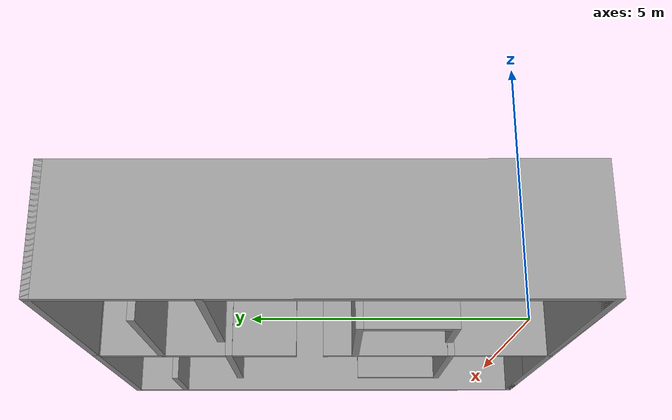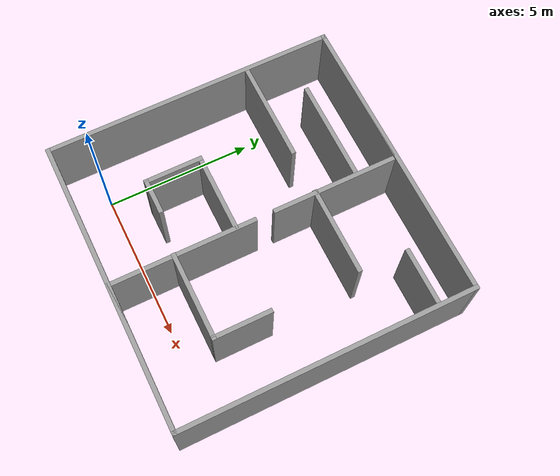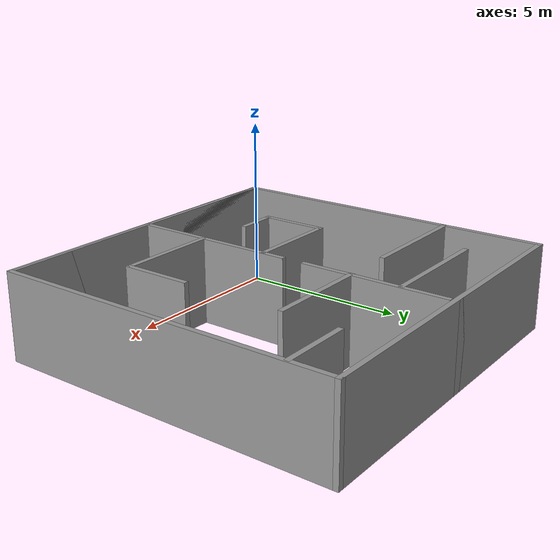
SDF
<?xml version='1.0'?>
<sdf version='1.7'>
  <model name='Untitled'>
    <pose>3.495 3.725 0 0 -0 0</pose>
    <link name='Wall_0'>
      <collision name='Wall_0_Collision'>
        <geometry>
          <box>
            <size>10 0.15 2.5</size>
          </box>
        </geometry>
        <pose>0 0 1.25 0 -0 0</pose>
      </collision>
      <visual name='Wall_0_Visual'>
        <pose>0 0 1.25 0 -0 0</pose>
        <geometry>
          <box>
            <size>10 0.15 2.5</size>
          </box>
        </geometry>
        <material>
          <script>
            <uri>file://media/materials/scripts/gazebo.material</uri>
            <name>Gazebo/Grey</name>
          </script>
          <ambient>1 1 1 1</ambient>
        </material>
        <meta>
          <layer>0</layer>
        </meta>
      </visual>
      <pose>-0 -4.925 0 0 -0 0</pose>
    </link>
    <link name='Wall_1'>
      <collision name='Wall_1_Collision'>
        <geometry>
          <box>
            <size>10 0.15 2.5</size>
          </box>
        </geometry>
        <pose>0 0 1.25 0 -0 0</pose>
      </collision>
      <visual name='Wall_1_Visual'>
        <pose>0 0 1.25 0 -0 0</pose>
        <geometry>
          <box>
            <size>10 0.15 2.5</size>
          </box>
        </geometry>
        <material>
          <script>
            <uri>file://media/materials/scripts/gazebo.material</uri>
            <name>Gazebo/Grey</name>
          </script>
          <ambient>1 1 1 1</ambient>
        </material>
        <meta>
          <layer>0</layer>
        </meta>
      </visual>
      <pose>4.925 0 0 0 -0 1.5708</pose>
    </link>
    <link name='Wall_10'>
      <collision name='Wall_10_Collision'>
        <geometry>
          <box>
            <size>5 0.15 2.5</size>
          </box>
        </geometry>
        <pose>0 0 1.25 0 -0 0</pose>
      </collision>
      <visual name='Wall_10_Visual'>
        <pose>0 0 1.25 0 -0 0</pose>
        <geometry>
          <box>
            <size>5 0.15 2.5</size>
          </box>
        </geometry>
        <material>
          <script>
            <uri>file://media/materials/scripts/gazebo.material</uri>
            <name>Gazebo/Grey</name>
          </script>
          <ambient>1 1 1 1</ambient>
        </material>
        <meta>
          <layer>0</layer>
        </meta>
      </visual>
      <pose>0.075 -2.5 0 0 -0 1.5708</pose>
    </link>
    <link name='Wall_13'>
      <collision name='Wall_13_Collision'>
        <geometry>
          <box>
            <size>5 0.15 2.5</size>
          </box>
        </geometry>
        <pose>0 0 1.25 0 -0 0</pose>
      </collision>
      <visual name='Wall_13_Visual'>
        <pose>0 0 1.25 0 -0 0</pose>
        <geometry>
          <box>
            <size>5 0.15 2.5</size>
          </box>
        </geometry>
        <material>
          <script>
            <uri>file://media/materials/scripts/gazebo.material</uri>
            <name>Gazebo/Grey</name>
          </script>
          <ambient>1 1 1 1</ambient>
        </material>
        <meta>
          <layer>0</layer>
        </meta>
      </visual>
      <pose>-2.5 4.925 0 0 -0 0</pose>
    </link>
    <link name='Wall_15'>
      <collision name='Wall_15_Collision'>
        <geometry>
          <box>
            <size>4.25 0.15 2.5</size>
          </box>
        </geometry>
        <pose>0 0 1.25 0 -0 0</pose>
      </collision>
      <visual name='Wall_15_Visual'>
        <pose>0 0 1.25 0 -0 0</pose>
        <geometry>
          <box>
            <size>4.25 0.15 2.5</size>
          </box>
        </geometry>
        <material>
          <script>
            <uri>file://media/materials/scripts/gazebo.material</uri>
            <name>Gazebo/Grey</name>
          </script>
          <ambient>1 1 1 1</ambient>
        </material>
        <meta>
          <layer>0</layer>
        </meta>
      </visual>
      <pose>0.078854 2.7046 0 0 -0 1.5708</pose>
    </link>
    <link name='Wall_17'>
      <collision name='Wall_17_Collision'>
        <geometry>
          <box>
            <size>3.5 0.15 2.5</size>
          </box>
        </geometry>
        <pose>0 0 1.25 0 -0 0</pose>
      </collision>
      <visual name='Wall_17_Visual'>
        <pose>0 0 1.25 0 -0 0</pose>
        <geometry>
          <box>
            <size>3.5 0.15 2.5</size>
          </box>
        </geometry>
        <material>
          <script>
            <uri>file://media/materials/scripts/gazebo.material</uri>
            <name>Gazebo/Grey</name>
          </script>
          <ambient>1 1 1 1</ambient>
        </material>
        <meta>
          <layer>0</layer>
        </meta>
      </visual>
      <pose>-1.65064 3.48921 0 0 -0 3.14159</pose>
    </link>
    <link name='Wall_19'>
      <collision name='Wall_19_Collision'>
        <geometry>
          <box>
            <size>3.5 0.15 2.5</size>
          </box>
        </geometry>
        <pose>0 0 1.25 0 -0 0</pose>
      </collision>
      <visual name='Wall_19_Visual'>
        <pose>0 0 1.25 0 -0 0</pose>
        <geometry>
          <box>
            <size>3.5 0.15 2.5</size>
          </box>
        </geometry>
        <material>
          <script>
            <uri>file://media/materials/scripts/gazebo.material</uri>
            <name>Gazebo/Grey</name>
          </script>
          <ambient>1 1 1 1</ambient>
        </material>
        <meta>
          <layer>0</layer>
        </meta>
      </visual>
      <pose>-3.19049 2.04688 0 0 -0 0</pose>
    </link>
    <link name='Wall_2'>
      <collision name='Wall_2_Collision'>
        <geometry>
          <box>
            <size>10 0.15 2.5</size>
          </box>
        </geometry>
        <pose>0 0 1.25 0 -0 0</pose>
      </collision>
      <visual name='Wall_2_Visual'>
        <pose>0 0 1.25 0 -0 0</pose>
        <geometry>
          <box>
            <size>10 0.15 2.5</size>
          </box>
        </geometry>
        <material>
          <script>
            <uri>file://media/materials/scripts/gazebo.material</uri>
            <name>Gazebo/Grey</name>
          </script>
          <ambient>1 1 1 1</ambient>
        </material>
        <meta>
          <layer>0</layer>
        </meta>
      </visual>
      <pose>-0 4.925 0 0 -0 3.14159</pose>
    </link>
    <link name='Wall_21'>
      <collision name='Wall_21_Collision'>
        <geometry>
          <box>
            <size>2.75 0.15 2.5</size>
          </box>
        </geometry>
        <pose>0 0 1.25 0 -0 0</pose>
      </collision>
      <visual name='Wall_21_Visual'>
        <pose>0 0 1.25 0 -0 0</pose>
        <geometry>
          <box>
            <size>2.75 0.15 2.5</size>
          </box>
        </geometry>
        <material>
          <script>
            <uri>file://media/materials/scripts/gazebo.material</uri>
            <name>Gazebo/Grey</name>
          </script>
          <ambient>1 1 1 1</ambient>
        </material>
        <meta>
          <layer>0</layer>
        </meta>
      </visual>
      <pose>-1.27564 -0.697061 0 0 -0 3.14159</pose>
    </link>
    <link name='Wall_22'>
      <collision name='Wall_22_Collision'>
        <geometry>
          <box>
            <size>2 0.15 2.5</size>
          </box>
        </geometry>
        <pose>0 0 1.25 0 -0 0</pose>
      </collision>
      <visual name='Wall_22_Visual'>
        <pose>0 0 1.25 0 -0 0</pose>
        <geometry>
          <box>
            <size>2 0.15 2.5</size>
          </box>
        </geometry>
        <material>
          <script>
            <uri>file://media/materials/scripts/gazebo.material</uri>
            <name>Gazebo/Grey</name>
          </script>
          <ambient>1 1 1 1</ambient>
        </material>
        <meta>
          <layer>0</layer>
        </meta>
      </visual>
      <pose>-2.57564 -1.62206 0 0 -0 -1.5708</pose>
    </link>
    <link name='Wall_23'>
      <collision name='Wall_23_Collision'>
        <geometry>
          <box>
            <size>1.25 0.15 2.5</size>
          </box>
        </geometry>
        <pose>0 0 1.25 0 -0 0</pose>
      </collision>
      <visual name='Wall_23_Visual'>
        <pose>0 0 1.25 0 -0 0</pose>
        <geometry>
          <box>
            <size>1.25 0.15 2.5</size>
          </box>
        </geometry>
        <material>
          <script>
            <uri>file://media/materials/scripts/gazebo.material</uri>
            <name>Gazebo/Grey</name>
          </script>
          <ambient>1 1 1 1</ambient>
        </material>
        <meta>
          <layer>0</layer>
        </meta>
      </visual>
      <pose>-2.02564 -2.54706 0 0 -0 0</pose>
    </link>
    <link name='Wall_26'>
      <collision name='Wall_26_Collision'>
        <geometry>
          <box>
            <size>3 0.15 2.5</size>
          </box>
        </geometry>
        <pose>0 0 1.25 0 -0 0</pose>
      </collision>
      <visual name='Wall_26_Visual'>
        <pose>0 0 1.25 0 -0 0</pose>
        <geometry>
          <box>
            <size>3 0.15 2.5</size>
          </box>
        </geometry>
        <material>
          <script>
            <uri>file://media/materials/scripts/gazebo.material</uri>
            <name>Gazebo/Grey</name>
          </script>
          <ambient>1 1 1 1</ambient>
        </material>
        <meta>
          <layer>0</layer>
        </meta>
      </visual>
      <pose>1.48454 -2.77261 0 0 -0 0</pose>
    </link>
    <link name='Wall_27'>
      <collision name='Wall_27_Collision'>
        <geometry>
          <box>
            <size>2 0.15 2.5</size>
          </box>
        </geometry>
        <pose>0 0 1.25 0 -0 0</pose>
      </collision>
      <visual name='Wall_27_Visual'>
        <pose>0 0 1.25 0 -0 0</pose>
        <geometry>
          <box>
            <size>2 0.15 2.5</size>
          </box>
        </geometry>
        <material>
          <script>
            <uri>file://media/materials/scripts/gazebo.material</uri>
            <name>Gazebo/Grey</name>
          </script>
          <ambient>1 1 1 1</ambient>
        </material>
        <meta>
          <layer>0</layer>
        </meta>
      </visual>
      <pose>2.90954 -1.84761 0 0 -0 1.5708</pose>
    </link>
    <link name='Wall_3'>
      <collision name='Wall_3_Collision'>
        <geometry>
          <box>
            <size>10 0.15 2.5</size>
          </box>
        </geometry>
        <pose>0 0 1.25 0 -0 0</pose>
      </collision>
      <visual name='Wall_3_Visual'>
        <pose>0 0 1.25 0 -0 0</pose>
        <geometry>
          <box>
            <size>10 0.15 2.5</size>
          </box>
        </geometry>
        <material>
          <script>
            <uri>file://media/materials/scripts/gazebo.material</uri>
            <name>Gazebo/Grey</name>
          </script>
          <ambient>1 1 1 1</ambient>
        </material>
        <meta>
          <layer>0</layer>
        </meta>
      </visual>
      <pose>-4.925 0 0 0 -0 -1.5708</pose>
    </link>
    <link name='Wall_31'>
      <collision name='Wall_31_Collision'>
        <geometry>
          <box>
            <size>3 0.15 2.5</size>
          </box>
        </geometry>
        <pose>0 0 1.25 0 -0 0</pose>
      </collision>
      <visual name='Wall_31_Visual'>
        <pose>0 0 1.25 0 -0 0</pose>
        <geometry>
          <box>
            <size>3 0.15 2.5</size>
          </box>
        </geometry>
        <material>
          <script>
            <uri>file://media/materials/scripts/gazebo.material</uri>
            <name>Gazebo/Grey</name>
          </script>
          <ambient>1 1 1 1</ambient>
        </material>
        <meta>
          <layer>0</layer>
        </meta>
      </visual>
      <pose>1.48454 2.04688 0 0 -0 0</pose>
    </link>
    <link name='Wall_33'>
      <collision name='Wall_33_Collision'>
        <geometry>
          <box>
            <size>2 0.15 2.5</size>
          </box>
        </geometry>
        <pose>0 0 1.25 0 -0 0</pose>
      </collision>
      <visual name='Wall_33_Visual'>
        <pose>0 0 1.25 0 -0 0</pose>
        <geometry>
          <box>
            <size>2 0.15 2.5</size>
          </box>
        </geometry>
        <material>
          <script>
            <uri>file://media/materials/scripts/gazebo.material</uri>
            <name>Gazebo/Grey</name>
          </script>
          <ambient>1 1 1 1</ambient>
        </material>
        <meta>
          <layer>0</layer>
        </meta>
      </visual>
      <pose>3.95403 3.66511 0 0 -0 3.14159</pose>
    </link>
    <link name='Wall_6'>
      <collision name='Wall_6_Collision'>
        <geometry>
          <box>
            <size>5 0.15 2.5</size>
          </box>
        </geometry>
        <pose>0 0 1.25 0 -0 0</pose>
      </collision>
      <visual name='Wall_6_Visual'>
        <pose>0 0 1.25 0 -0 0</pose>
        <geometry>
          <box>
            <size>5 0.15 2.5</size>
          </box>
        </geometry>
        <material>
          <script>
            <uri>file://media/materials/scripts/gazebo.material</uri>
            <name>Gazebo/Grey</name>
          </script>
          <ambient>1 1 1 1</ambient>
        </material>
        <meta>
          <layer>0</layer>
        </meta>
      </visual>
      <pose>-2.5 -4.925 0 0 -0 0</pose>
    </link>
    <link name='Wall_9'>
      <collision name='Wall_9_Collision'>
        <geometry>
          <box>
            <size>5 0.15 2.5</size>
          </box>
        </geometry>
        <pose>0 0 1.25 0 -0 0</pose>
      </collision>
      <visual name='Wall_9_Visual'>
        <pose>0 0 1.25 0 -0 0</pose>
        <geometry>
          <box>
            <size>5 0.15 2.5</size>
          </box>
        </geometry>
        <material>
          <script>
            <uri>file://media/materials/scripts/gazebo.material</uri>
            <name>Gazebo/Grey</name>
          </script>
          <ambient>1 1 1 1</ambient>
        </material>
        <meta>
          <layer>0</layer>
        </meta>
      </visual>
      <pose>2.5 -4.925 0 0 -0 3.14159</pose>
    </link>
    <static>1</static>
  </model>
</sdf>
